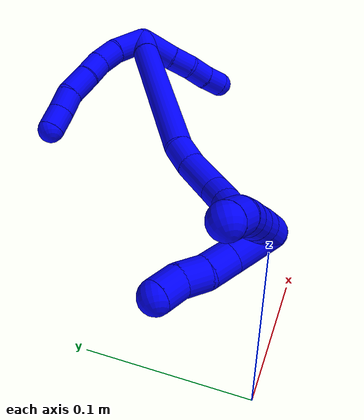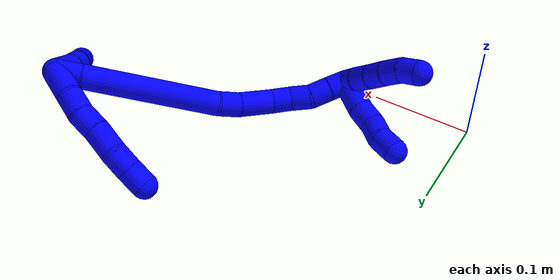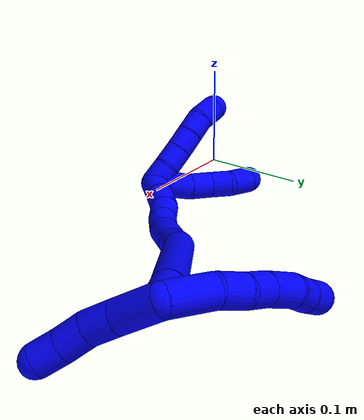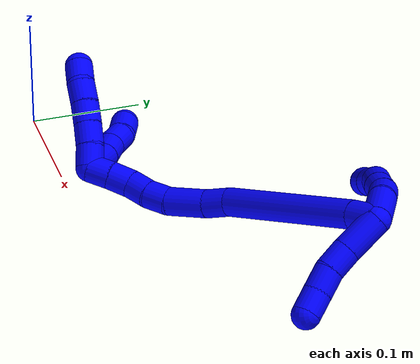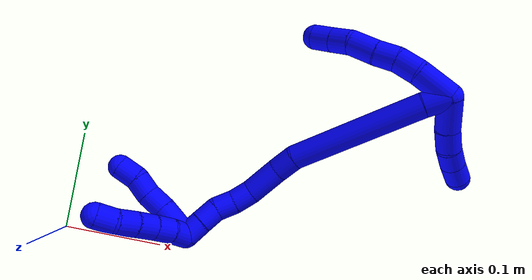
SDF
<sdf version="1.7">
 <world name="default">
  <model name="1">
   <static>0</static>
   <link name="1">
    <collision name="collision-cylinder-e_1_2_8">
     <pose>-0.015878 0.002927 -0.009066 -2.82931 -1.03041 2.59923</pose>
     <geometry><cylinder><radius>0.0125</radius><length>0.037034</length></cylinder></geometry>
     <surface>
      <friction><ode><mu>1.16</mu><mu2>1.16</mu2><slip1>0</slip1><slip2>0</slip2></ode></friction>
      <contact><ode><kp>1e+06</kp><kd>1</kd><max_vel>0</max_vel><min_depth>0.001</min_depth></ode></contact>
     </surface>
    </collision>
    <visual name="visual-cylinder-e_1_2_8">
     <pose>-0.015878 0.002927 -0.009066 -2.82931 -1.03041 2.59923</pose>
     <geometry><cylinder><radius>0.0125</radius><length>0.037034</length></cylinder></geometry>
     <material><ambient>0 0 1 1</ambient></material>
    </visual>
    <collision name="collision-cylinder-e_2_8_9">
     <pose>-0.040116 0.009416 -0.02505 -2.66612 -0.821123 2.12569</pose>
     <geometry><cylinder><radius>0.0125</radius><length>0.022842</length></cylinder></geometry>
     <surface>
      <friction><ode><mu>1.16</mu><mu2>1.16</mu2><slip1>0</slip1><slip2>0</slip2></ode></friction>
      <contact><ode><kp>1e+06</kp><kd>1</kd><max_vel>0</max_vel><min_depth>0.001</min_depth></ode></contact>
     </surface>
    </collision>
    <visual name="visual-cylinder-e_2_8_9">
     <pose>-0.040116 0.009416 -0.02505 -2.66612 -0.821123 2.12569</pose>
     <geometry><cylinder><radius>0.0125</radius><length>0.022842</length></cylinder></geometry>
     <material><ambient>0 0 1 1</ambient></material>
    </visual>
    <collision name="collision-cylinder-e_3_9_10">
     <pose>-0.05496 0.015231 -0.040282 -2.87696 -0.645338 2.38392</pose>
     <geometry><cylinder><radius>0.0125</radius><length>0.021561</length></cylinder></geometry>
     <surface>
      <friction><ode><mu>1.16</mu><mu2>1.16</mu2><slip1>0</slip1><slip2>0</slip2></ode></friction>
      <contact><ode><kp>1e+06</kp><kd>1</kd><max_vel>0</max_vel><min_depth>0.001</min_depth></ode></contact>
     </surface>
    </collision>
    <visual name="visual-cylinder-e_3_9_10">
     <pose>-0.05496 0.015231 -0.040282 -2.87696 -0.645338 2.38392</pose>
     <geometry><cylinder><radius>0.0125</radius><length>0.021561</length></cylinder></geometry>
     <material><ambient>0 0 1 1</ambient></material>
    </visual>
    <collision name="collision-cylinder-e_4_10_11">
     <pose>-0.069959 0.021627 -0.058319 -2.73883 -0.678151 2.09219</pose>
     <geometry><cylinder><radius>0.0125</radius><length>0.027147</length></cylinder></geometry>
     <surface>
      <friction><ode><mu>1.16</mu><mu2>1.16</mu2><slip1>0</slip1><slip2>0</slip2></ode></friction>
      <contact><ode><kp>1e+06</kp><kd>1</kd><max_vel>0</max_vel><min_depth>0.001</min_depth></ode></contact>
     </surface>
    </collision>
    <visual name="visual-cylinder-e_4_10_11">
     <pose>-0.069959 0.021627 -0.058319 -2.73883 -0.678151 2.09219</pose>
     <geometry><cylinder><radius>0.0125</radius><length>0.027147</length></cylinder></geometry>
     <material><ambient>0 0 1 1</ambient></material>
    </visual>
    <collision name="collision-cylinder-e_5_11_12">
     <pose>-0.082418 0.029754 -0.07676 -2.71285 -0.390319 1.47438</pose>
     <geometry><cylinder><radius>0.0125</radius><length>0.020726</length></cylinder></geometry>
     <surface>
      <friction><ode><mu>1.16</mu><mu2>1.16</mu2><slip1>0</slip1><slip2>0</slip2></ode></friction>
      <contact><ode><kp>1e+06</kp><kd>1</kd><max_vel>0</max_vel><min_depth>0.001</min_depth></ode></contact>
     </surface>
    </collision>
    <visual name="visual-cylinder-e_5_11_12">
     <pose>-0.082418 0.029754 -0.07676 -2.71285 -0.390319 1.47438</pose>
     <geometry><cylinder><radius>0.0125</radius><length>0.020726</length></cylinder></geometry>
     <material><ambient>0 0 1 1</ambient></material>
    </visual>
    <collision name="collision-cylinder-e_6_12_6">
     <pose>-0.090824 0.037061 -0.094197 -2.77753 -0.446054 1.77804</pose>
     <geometry><cylinder><radius>0.0125</radius><length>0.020689</length></cylinder></geometry>
     <surface>
      <friction><ode><mu>1.16</mu><mu2>1.16</mu2><slip1>0</slip1><slip2>0</slip2></ode></friction>
      <contact><ode><kp>1e+06</kp><kd>1</kd><max_vel>0</max_vel><min_depth>0.001</min_depth></ode></contact>
     </surface>
    </collision>
    <visual name="visual-cylinder-e_6_12_6">
     <pose>-0.090824 0.037061 -0.094197 -2.77753 -0.446054 1.77804</pose>
     <geometry><cylinder><radius>0.0125</radius><length>0.020689</length></cylinder></geometry>
     <material><ambient>0 0 1 1</ambient></material>
    </visual>
    <collision name="collision-cylinder-e_1_2_13">
     <pose>0.015991 0.00128 -0.007322 -2.96845 1.13569 -2.87116</pose>
     <geometry><cylinder><radius>0.0125</radius><length>0.035267</length></cylinder></geometry>
     <surface>
      <friction><ode><mu>1.16</mu><mu2>1.16</mu2><slip1>0</slip1><slip2>0</slip2></ode></friction>
      <contact><ode><kp>1e+06</kp><kd>1</kd><max_vel>0</max_vel><min_depth>0.001</min_depth></ode></contact>
     </surface>
    </collision>
    <visual name="visual-cylinder-e_1_2_13">
     <pose>0.015991 0.00128 -0.007322 -2.96845 1.13569 -2.87116</pose>
     <geometry><cylinder><radius>0.0125</radius><length>0.035267</length></cylinder></geometry>
     <material><ambient>0 0 1 1</ambient></material>
    </visual>
    <collision name="collision-cylinder-e_2_13_14">
     <pose>0.042631 0.003476 -0.01814 -2.88564 1.24358 -2.78626</pose>
     <geometry><cylinder><radius>0.0125</radius><length>0.022494</length></cylinder></geometry>
     <surface>
      <friction><ode><mu>1.16</mu><mu2>1.16</mu2><slip1>0</slip1><slip2>0</slip2></ode></friction>
      <contact><ode><kp>1e+06</kp><kd>1</kd><max_vel>0</max_vel><min_depth>0.001</min_depth></ode></contact>
     </surface>
    </collision>
    <visual name="visual-cylinder-e_2_13_14">
     <pose>0.042631 0.003476 -0.01814 -2.88564 1.24358 -2.78626</pose>
     <geometry><cylinder><radius>0.0125</radius><length>0.022494</length></cylinder></geometry>
     <material><ambient>0 0 1 1</ambient></material>
    </visual>
    <collision name="collision-cylinder-e_3_14_15">
     <pose>0.063443 0.007304 -0.023637 -2.17248 1.23615 -1.86697</pose>
     <geometry><cylinder><radius>0.0125</radius><length>0.021517</length></cylinder></geometry>
     <surface>
      <friction><ode><mu>1.16</mu><mu2>1.16</mu2><slip1>0</slip1><slip2>0</slip2></ode></friction>
      <contact><ode><kp>1e+06</kp><kd>1</kd><max_vel>0</max_vel><min_depth>0.001</min_depth></ode></contact>
     </surface>
    </collision>
    <visual name="visual-cylinder-e_3_14_15">
     <pose>0.063443 0.007304 -0.023637 -2.17248 1.23615 -1.86697</pose>
     <geometry><cylinder><radius>0.0125</radius><length>0.021517</length></cylinder></geometry>
     <material><ambient>0 0 1 1</ambient></material>
    </visual>
    <collision name="collision-cylinder-e_4_15_5">
     <pose>0.083668 0.012411 -0.026761 -2.04426 1.33052 -1.81784</pose>
     <geometry><cylinder><radius>0.0125</radius><length>0.020722</length></cylinder></geometry>
     <surface>
      <friction><ode><mu>1.16</mu><mu2>1.16</mu2><slip1>0</slip1><slip2>0</slip2></ode></friction>
      <contact><ode><kp>1e+06</kp><kd>1</kd><max_vel>0</max_vel><min_depth>0.001</min_depth></ode></contact>
     </surface>
    </collision>
    <visual name="visual-cylinder-e_4_15_5">
     <pose>0.083668 0.012411 -0.026761 -2.04426 1.33052 -1.81784</pose>
     <geometry><cylinder><radius>0.0125</radius><length>0.020722</length></cylinder></geometry>
     <material><ambient>0 0 1 1</ambient></material>
    </visual>
    <collision name="collision-cylinder-e_1_2_16">
     <pose>-0.00139 -0.002299 -0.01219 2.9552 -0.111612 -1.07745</pose>
     <geometry><cylinder><radius>0.0125</radius><length>0.024966</length></cylinder></geometry>
     <surface>
      <friction><ode><mu>1.16</mu><mu2>1.16</mu2><slip1>0</slip1><slip2>0</slip2></ode></friction>
      <contact><ode><kp>1e+06</kp><kd>1</kd><max_vel>0</max_vel><min_depth>0.001</min_depth></ode></contact>
     </surface>
    </collision>
    <visual name="visual-cylinder-e_1_2_16">
     <pose>-0.00139 -0.002299 -0.01219 2.9552 -0.111612 -1.07745</pose>
     <geometry><cylinder><radius>0.0125</radius><length>0.024966</length></cylinder></geometry>
     <material><ambient>0 0 1 1</ambient></material>
    </visual>
    <collision name="collision-cylinder-e_2_16_17">
     <pose>-0.004112 -0.014629 -0.091377 2.99296 -0.019654 -0.262484</pose>
     <geometry><cylinder><radius>0.0125</radius><length>0.135512</length></cylinder></geometry>
     <surface>
      <friction><ode><mu>1.16</mu><mu2>1.16</mu2><slip1>0</slip1><slip2>0</slip2></ode></friction>
      <contact><ode><kp>1e+06</kp><kd>1</kd><max_vel>0</max_vel><min_depth>0.001</min_depth></ode></contact>
     </surface>
    </collision>
    <visual name="visual-cylinder-e_2_16_17">
     <pose>-0.004112 -0.014629 -0.091377 2.99296 -0.019654 -0.262484</pose>
     <geometry><cylinder><radius>0.0125</radius><length>0.135512</length></cylinder></geometry>
     <material><ambient>0 0 1 1</ambient></material>
    </visual>
    <collision name="collision-cylinder-e_3_17_18">
     <pose>-0.002858 -0.026723 -0.16923 2.9539 0.229872 1.77358</pose>
     <geometry><cylinder><radius>0.0125</radius><length>0.022699</length></cylinder></geometry>
     <surface>
      <friction><ode><mu>1.16</mu><mu2>1.16</mu2><slip1>0</slip1><slip2>0</slip2></ode></friction>
      <contact><ode><kp>1e+06</kp><kd>1</kd><max_vel>0</max_vel><min_depth>0.001</min_depth></ode></contact>
     </surface>
    </collision>
    <visual name="visual-cylinder-e_3_17_18">
     <pose>-0.002858 -0.026723 -0.16923 2.9539 0.229872 1.77358</pose>
     <geometry><cylinder><radius>0.0125</radius><length>0.022699</length></cylinder></geometry>
     <material><ambient>0 0 1 1</ambient></material>
    </visual>
    <collision name="collision-cylinder-e_4_18_19">
     <pose>0.003602 -0.035008 -0.196547 2.78014 0.216675 1.07383</pose>
     <geometry><cylinder><radius>0.0125</radius><length>0.036038</length></cylinder></geometry>
     <surface>
      <friction><ode><mu>1.16</mu><mu2>1.16</mu2><slip1>0</slip1><slip2>0</slip2></ode></friction>
      <contact><ode><kp>1e+06</kp><kd>1</kd><max_vel>0</max_vel><min_depth>0.001</min_depth></ode></contact>
     </surface>
    </collision>
    <visual name="visual-cylinder-e_4_18_19">
     <pose>0.003602 -0.035008 -0.196547 2.78014 0.216675 1.07383</pose>
     <geometry><cylinder><radius>0.0125</radius><length>0.036038</length></cylinder></geometry>
     <material><ambient>0 0 1 1</ambient></material>
    </visual>
    <collision name="collision-cylinder-e_5_19_20">
     <pose>0.007598 -0.046131 -0.222005 2.64288 0.011988 0.047065</pose>
     <geometry><cylinder><radius>0.0125</radius><length>0.020492</length></cylinder></geometry>
     <surface>
      <friction><ode><mu>1.16</mu><mu2>1.16</mu2><slip1>0</slip1><slip2>0</slip2></ode></friction>
      <contact><ode><kp>1e+06</kp><kd>1</kd><max_vel>0</max_vel><min_depth>0.001</min_depth></ode></contact>
     </surface>
    </collision>
    <visual name="visual-cylinder-e_5_19_20">
     <pose>0.007598 -0.046131 -0.222005 2.64288 0.011988 0.047065</pose>
     <geometry><cylinder><radius>0.0125</radius><length>0.020492</length></cylinder></geometry>
     <material><ambient>0 0 1 1</ambient></material>
    </visual>
    <collision name="collision-cylinder-e_6_20_21">
     <pose>0.006003 -0.056049 -0.239484 2.60738 -0.172655 -0.612617</pose>
     <geometry><cylinder><radius>0.0125</radius><length>0.020007</length></cylinder></geometry>
     <surface>
      <friction><ode><mu>1.16</mu><mu2>1.16</mu2><slip1>0</slip1><slip2>0</slip2></ode></friction>
      <contact><ode><kp>1e+06</kp><kd>1</kd><max_vel>0</max_vel><min_depth>0.001</min_depth></ode></contact>
     </surface>
    </collision>
    <visual name="visual-cylinder-e_6_20_21">
     <pose>0.006003 -0.056049 -0.239484 2.60738 -0.172655 -0.612617</pose>
     <geometry><cylinder><radius>0.0125</radius><length>0.020007</length></cylinder></geometry>
     <material><ambient>0 0 1 1</ambient></material>
    </visual>
    <collision name="collision-cylinder-e_7_21_22">
     <pose>0.005327 -0.067838 -0.255384 2.40176 0.103428 0.265398</pose>
     <geometry><cylinder><radius>0.0125</radius><length>0.020195</length></cylinder></geometry>
     <surface>
      <friction><ode><mu>1.16</mu><mu2>1.16</mu2><slip1>0</slip1><slip2>0</slip2></ode></friction>
      <contact><ode><kp>1e+06</kp><kd>1</kd><max_vel>0</max_vel><min_depth>0.001</min_depth></ode></contact>
     </surface>
    </collision>
    <visual name="visual-cylinder-e_7_21_22">
     <pose>0.005327 -0.067838 -0.255384 2.40176 0.103428 0.265398</pose>
     <geometry><cylinder><radius>0.0125</radius><length>0.020195</length></cylinder></geometry>
     <material><ambient>0 0 1 1</ambient></material>
    </visual>
    <collision name="collision-cylinder-e_8_22_1">
     <pose>0.00782 -0.081004 -0.270412 2.44277 0.144955 0.393376</pose>
     <geometry><cylinder><radius>0.0125</radius><length>0.020091</length></cylinder></geometry>
     <surface>
      <friction><ode><mu>1.16</mu><mu2>1.16</mu2><slip1>0</slip1><slip2>0</slip2></ode></friction>
      <contact><ode><kp>1e+06</kp><kd>1</kd><max_vel>0</max_vel><min_depth>0.001</min_depth></ode></contact>
     </surface>
    </collision>
    <visual name="visual-cylinder-e_8_22_1">
     <pose>0.00782 -0.081004 -0.270412 2.44277 0.144955 0.393376</pose>
     <geometry><cylinder><radius>0.0125</radius><length>0.020091</length></cylinder></geometry>
     <material><ambient>0 0 1 1</ambient></material>
    </visual>
    <collision name="collision-cylinder-e_1_1_23">
     <pose>-0.005824 -0.080935 -0.285528 -2.43072 -0.990126 1.93698</pose>
     <geometry><cylinder><radius>0.0125</radius><length>0.03611</length></cylinder></geometry>
     <surface>
      <friction><ode><mu>1.16</mu><mu2>1.16</mu2><slip1>0</slip1><slip2>0</slip2></ode></friction>
      <contact><ode><kp>1e+06</kp><kd>1</kd><max_vel>0</max_vel><min_depth>0.001</min_depth></ode></contact>
     </surface>
    </collision>
    <visual name="visual-cylinder-e_1_1_23">
     <pose>-0.005824 -0.080935 -0.285528 -2.43072 -0.990126 1.93698</pose>
     <geometry><cylinder><radius>0.0125</radius><length>0.03611</length></cylinder></geometry>
     <material><ambient>0 0 1 1</ambient></material>
    </visual>
    <collision name="collision-cylinder-e_2_23_24">
     <pose>-0.030597 -0.072384 -0.298075 -2.74878 -1.05732 2.48497</pose>
     <geometry><cylinder><radius>0.0125</radius><length>0.022218</length></cylinder></geometry>
     <surface>
      <friction><ode><mu>1.16</mu><mu2>1.16</mu2><slip1>0</slip1><slip2>0</slip2></ode></friction>
      <contact><ode><kp>1e+06</kp><kd>1</kd><max_vel>0</max_vel><min_depth>0.001</min_depth></ode></contact>
     </surface>
    </collision>
    <visual name="visual-cylinder-e_2_23_24">
     <pose>-0.030597 -0.072384 -0.298075 -2.74878 -1.05732 2.48497</pose>
     <geometry><cylinder><radius>0.0125</radius><length>0.022218</length></cylinder></geometry>
     <material><ambient>0 0 1 1</ambient></material>
    </visual>
    <collision name="collision-cylinder-e_3_24_25">
     <pose>-0.049924 -0.067994 -0.305369 -2.3458 -1.24874 2.08543</pose>
     <geometry><cylinder><radius>0.0125</radius><length>0.020347</length></cylinder></geometry>
     <surface>
      <friction><ode><mu>1.16</mu><mu2>1.16</mu2><slip1>0</slip1><slip2>0</slip2></ode></friction>
      <contact><ode><kp>1e+06</kp><kd>1</kd><max_vel>0</max_vel><min_depth>0.001</min_depth></ode></contact>
     </surface>
    </collision>
    <visual name="visual-cylinder-e_3_24_25">
     <pose>-0.049924 -0.067994 -0.305369 -2.3458 -1.24874 2.08543</pose>
     <geometry><cylinder><radius>0.0125</radius><length>0.020347</length></cylinder></geometry>
     <material><ambient>0 0 1 1</ambient></material>
    </visual>
    <collision name="collision-cylinder-e_4_25_4">
     <pose>-0.068679 -0.064953 -0.313121 -3.00771 -1.02357 2.90401</pose>
     <geometry><cylinder><radius>0.0125</radius><length>0.021325</length></cylinder></geometry>
     <surface>
      <friction><ode><mu>1.16</mu><mu2>1.16</mu2><slip1>0</slip1><slip2>0</slip2></ode></friction>
      <contact><ode><kp>1e+06</kp><kd>1</kd><max_vel>0</max_vel><min_depth>0.001</min_depth></ode></contact>
     </surface>
    </collision>
    <visual name="visual-cylinder-e_4_25_4">
     <pose>-0.068679 -0.064953 -0.313121 -3.00771 -1.02357 2.90401</pose>
     <geometry><cylinder><radius>0.0125</radius><length>0.021325</length></cylinder></geometry>
     <material><ambient>0 0 1 1</ambient></material>
    </visual>
    <collision name="collision-cylinder-e_1_1_26">
     <pose>0.00123 -0.093173 -0.279436 1.81083 -0.934142 -1.14231</pose>
     <geometry><cylinder><radius>0.0125</radius><length>0.02</length></cylinder></geometry>
     <surface>
      <friction><ode><mu>1.16</mu><mu2>1.16</mu2><slip1>0</slip1><slip2>0</slip2></ode></friction>
      <contact><ode><kp>1e+06</kp><kd>1</kd><max_vel>0</max_vel><min_depth>0.001</min_depth></ode></contact>
     </surface>
    </collision>
    <visual name="visual-cylinder-e_1_1_26">
     <pose>0.00123 -0.093173 -0.279436 1.81083 -0.934142 -1.14231</pose>
     <geometry><cylinder><radius>0.0125</radius><length>0.02</length></cylinder></geometry>
     <material><ambient>0 0 1 1</ambient></material>
    </visual>
    <collision name="collision-cylinder-e_2_26_27">
     <pose>-0.014425 -0.104829 -0.283575 2.00486 -0.865509 -1.25241</pose>
     <geometry><cylinder><radius>0.0125</radius><length>0.02</length></cylinder></geometry>
     <surface>
      <friction><ode><mu>1.16</mu><mu2>1.16</mu2><slip1>0</slip1><slip2>0</slip2></ode></friction>
      <contact><ode><kp>1e+06</kp><kd>1</kd><max_vel>0</max_vel><min_depth>0.001</min_depth></ode></contact>
     </surface>
    </collision>
    <visual name="visual-cylinder-e_2_26_27">
     <pose>-0.014425 -0.104829 -0.283575 2.00486 -0.865509 -1.25241</pose>
     <geometry><cylinder><radius>0.0125</radius><length>0.02</length></cylinder></geometry>
     <material><ambient>0 0 1 1</ambient></material>
    </visual>
    <collision name="collision-cylinder-e_3_27_28">
     <pose>-0.029421 -0.116831 -0.289138 2.0047 -0.830408 -1.20813</pose>
     <geometry><cylinder><radius>0.0125</radius><length>0.02</length></cylinder></geometry>
     <surface>
      <friction><ode><mu>1.16</mu><mu2>1.16</mu2><slip1>0</slip1><slip2>0</slip2></ode></friction>
      <contact><ode><kp>1e+06</kp><kd>1</kd><max_vel>0</max_vel><min_depth>0.001</min_depth></ode></contact>
     </surface>
    </collision>
    <visual name="visual-cylinder-e_3_27_28">
     <pose>-0.029421 -0.116831 -0.289138 2.0047 -0.830408 -1.20813</pose>
     <geometry><cylinder><radius>0.0125</radius><length>0.02</length></cylinder></geometry>
     <material><ambient>0 0 1 1</ambient></material>
    </visual>
    <collision name="collision-cylinder-e_4_28_29">
     <pose>-0.043956 -0.128971 -0.295522 2.10345 -0.797087 -1.27027</pose>
     <geometry><cylinder><radius>0.0125</radius><length>0.02</length></cylinder></geometry>
     <surface>
      <friction><ode><mu>1.16</mu><mu2>1.16</mu2><slip1>0</slip1><slip2>0</slip2></ode></friction>
      <contact><ode><kp>1e+06</kp><kd>1</kd><max_vel>0</max_vel><min_depth>0.001</min_depth></ode></contact>
     </surface>
    </collision>
    <visual name="visual-cylinder-e_4_28_29">
     <pose>-0.043956 -0.128971 -0.295522 2.10345 -0.797087 -1.27027</pose>
     <geometry><cylinder><radius>0.0125</radius><length>0.02</length></cylinder></geometry>
     <material><ambient>0 0 1 1</ambient></material>
    </visual>
    <collision name="collision-cylinder-e_5_29_3">
     <pose>-0.059134 -0.138588 -0.303832 2.49465 -0.931407 -1.96504</pose>
     <geometry><cylinder><radius>0.0125</radius><length>0.02</length></cylinder></geometry>
     <surface>
      <friction><ode><mu>1.16</mu><mu2>1.16</mu2><slip1>0</slip1><slip2>0</slip2></ode></friction>
      <contact><ode><kp>1e+06</kp><kd>1</kd><max_vel>0</max_vel><min_depth>0.001</min_depth></ode></contact>
     </surface>
    </collision>
    <visual name="visual-cylinder-e_5_29_3">
     <pose>-0.059134 -0.138588 -0.303832 2.49465 -0.931407 -1.96504</pose>
     <geometry><cylinder><radius>0.0125</radius><length>0.02</length></cylinder></geometry>
     <material><ambient>0 0 1 1</ambient></material>
    </visual>
    <collision name="collision-sphere-3">
     <pose>-0.067159 -0.142184 -0.308594 0 -0 0</pose>
     <geometry><sphere><radius>0.0125</radius></sphere></geometry>
     <surface>
      <friction><ode><mu>1.16</mu><mu2>1.16</mu2><slip1>0</slip1><slip2>0</slip2></ode></friction>
      <contact><ode><kp>1e+06</kp><kd>1</kd><max_vel>0</max_vel><min_depth>0.001</min_depth></ode></contact>
     </surface>
    </collision>
    <visual name="visual-sphere-3">
     <pose>-0.067159 -0.142184 -0.308594 0 -0 0</pose>
     <geometry><sphere><radius>0.0125</radius></sphere></geometry>
     <material><ambient>0 0 1 1</ambient></material>
    </visual>
    <collision name="collision-sphere-29">
     <pose>-0.05111 -0.134991 -0.299071 0 -0 0</pose>
     <geometry><sphere><radius>0.0125</radius></sphere></geometry>
     <surface>
      <friction><ode><mu>1.16</mu><mu2>1.16</mu2><slip1>0</slip1><slip2>0</slip2></ode></friction>
      <contact><ode><kp>1e+06</kp><kd>1</kd><max_vel>0</max_vel><min_depth>0.001</min_depth></ode></contact>
     </surface>
    </collision>
    <visual name="visual-sphere-29">
     <pose>-0.05111 -0.134991 -0.299071 0 -0 0</pose>
     <geometry><sphere><radius>0.0125</radius></sphere></geometry>
     <material><ambient>0 0 1 1</ambient></material>
    </visual>
    <collision name="collision-sphere-28">
     <pose>-0.036803 -0.122951 -0.291974 0 -0 0</pose>
     <geometry><sphere><radius>0.0125</radius></sphere></geometry>
     <surface>
      <friction><ode><mu>1.16</mu><mu2>1.16</mu2><slip1>0</slip1><slip2>0</slip2></ode></friction>
      <contact><ode><kp>1e+06</kp><kd>1</kd><max_vel>0</max_vel><min_depth>0.001</min_depth></ode></contact>
     </surface>
    </collision>
    <visual name="visual-sphere-28">
     <pose>-0.036803 -0.122951 -0.291974 0 -0 0</pose>
     <geometry><sphere><radius>0.0125</radius></sphere></geometry>
     <material><ambient>0 0 1 1</ambient></material>
    </visual>
    <collision name="collision-sphere-27">
     <pose>-0.022039 -0.11071 -0.286302 0 -0 0</pose>
     <geometry><sphere><radius>0.0125</radius></sphere></geometry>
     <surface>
      <friction><ode><mu>1.16</mu><mu2>1.16</mu2><slip1>0</slip1><slip2>0</slip2></ode></friction>
      <contact><ode><kp>1e+06</kp><kd>1</kd><max_vel>0</max_vel><min_depth>0.001</min_depth></ode></contact>
     </surface>
    </collision>
    <visual name="visual-sphere-27">
     <pose>-0.022039 -0.11071 -0.286302 0 -0 0</pose>
     <geometry><sphere><radius>0.0125</radius></sphere></geometry>
     <material><ambient>0 0 1 1</ambient></material>
    </visual>
    <collision name="collision-sphere-26">
     <pose>-0.006811 -0.098947 -0.280849 0 -0 0</pose>
     <geometry><sphere><radius>0.0125</radius></sphere></geometry>
     <surface>
      <friction><ode><mu>1.16</mu><mu2>1.16</mu2><slip1>0</slip1><slip2>0</slip2></ode></friction>
      <contact><ode><kp>1e+06</kp><kd>1</kd><max_vel>0</max_vel><min_depth>0.001</min_depth></ode></contact>
     </surface>
    </collision>
    <visual name="visual-sphere-26">
     <pose>-0.006811 -0.098947 -0.280849 0 -0 0</pose>
     <geometry><sphere><radius>0.0125</radius></sphere></geometry>
     <material><ambient>0 0 1 1</ambient></material>
    </visual>
    <collision name="collision-sphere-4">
     <pose>-0.077785 -0.064213 -0.318619 0 -0 0</pose>
     <geometry><sphere><radius>0.0125</radius></sphere></geometry>
     <surface>
      <friction><ode><mu>1.16</mu><mu2>1.16</mu2><slip1>0</slip1><slip2>0</slip2></ode></friction>
      <contact><ode><kp>1e+06</kp><kd>1</kd><max_vel>0</max_vel><min_depth>0.001</min_depth></ode></contact>
     </surface>
    </collision>
    <visual name="visual-sphere-4">
     <pose>-0.077785 -0.064213 -0.318619 0 -0 0</pose>
     <geometry><sphere><radius>0.0125</radius></sphere></geometry>
     <material><ambient>0 0 1 1</ambient></material>
    </visual>
    <collision name="collision-sphere-25">
     <pose>-0.059574 -0.065694 -0.307623 0 -0 0</pose>
     <geometry><sphere><radius>0.0125</radius></sphere></geometry>
     <surface>
      <friction><ode><mu>1.16</mu><mu2>1.16</mu2><slip1>0</slip1><slip2>0</slip2></ode></friction>
      <contact><ode><kp>1e+06</kp><kd>1</kd><max_vel>0</max_vel><min_depth>0.001</min_depth></ode></contact>
     </surface>
    </collision>
    <visual name="visual-sphere-25">
     <pose>-0.059574 -0.065694 -0.307623 0 -0 0</pose>
     <geometry><sphere><radius>0.0125</radius></sphere></geometry>
     <material><ambient>0 0 1 1</ambient></material>
    </visual>
    <collision name="collision-sphere-24">
     <pose>-0.040273 -0.070295 -0.303116 0 -0 0</pose>
     <geometry><sphere><radius>0.0125</radius></sphere></geometry>
     <surface>
      <friction><ode><mu>1.16</mu><mu2>1.16</mu2><slip1>0</slip1><slip2>0</slip2></ode></friction>
      <contact><ode><kp>1e+06</kp><kd>1</kd><max_vel>0</max_vel><min_depth>0.001</min_depth></ode></contact>
     </surface>
    </collision>
    <visual name="visual-sphere-24">
     <pose>-0.040273 -0.070295 -0.303116 0 -0 0</pose>
     <geometry><sphere><radius>0.0125</radius></sphere></geometry>
     <material><ambient>0 0 1 1</ambient></material>
    </visual>
    <collision name="collision-sphere-23">
     <pose>-0.02092 -0.074473 -0.293034 0 -0 0</pose>
     <geometry><sphere><radius>0.0125</radius></sphere></geometry>
     <surface>
      <friction><ode><mu>1.16</mu><mu2>1.16</mu2><slip1>0</slip1><slip2>0</slip2></ode></friction>
      <contact><ode><kp>1e+06</kp><kd>1</kd><max_vel>0</max_vel><min_depth>0.001</min_depth></ode></contact>
     </surface>
    </collision>
    <visual name="visual-sphere-23">
     <pose>-0.02092 -0.074473 -0.293034 0 -0 0</pose>
     <geometry><sphere><radius>0.0125</radius></sphere></geometry>
     <material><ambient>0 0 1 1</ambient></material>
    </visual>
    <collision name="collision-sphere-1">
     <pose>0.009271 -0.087398 -0.278022 0 -0 0</pose>
     <geometry><sphere><radius>0.0125</radius></sphere></geometry>
     <surface>
      <friction><ode><mu>1.16</mu><mu2>1.16</mu2><slip1>0</slip1><slip2>0</slip2></ode></friction>
      <contact><ode><kp>1e+06</kp><kd>1</kd><max_vel>0</max_vel><min_depth>0.001</min_depth></ode></contact>
     </surface>
    </collision>
    <visual name="visual-sphere-1">
     <pose>0.009271 -0.087398 -0.278022 0 -0 0</pose>
     <geometry><sphere><radius>0.0125</radius></sphere></geometry>
     <material><ambient>0 0 1 1</ambient></material>
    </visual>
    <collision name="collision-sphere-22">
     <pose>0.006369 -0.074609 -0.262802 0 -0 0</pose>
     <geometry><sphere><radius>0.0125</radius></sphere></geometry>
     <surface>
      <friction><ode><mu>1.16</mu><mu2>1.16</mu2><slip1>0</slip1><slip2>0</slip2></ode></friction>
      <contact><ode><kp>1e+06</kp><kd>1</kd><max_vel>0</max_vel><min_depth>0.001</min_depth></ode></contact>
     </surface>
    </collision>
    <visual name="visual-sphere-22">
     <pose>0.006369 -0.074609 -0.262802 0 -0 0</pose>
     <geometry><sphere><radius>0.0125</radius></sphere></geometry>
     <material><ambient>0 0 1 1</ambient></material>
    </visual>
    <collision name="collision-sphere-21">
     <pose>0.004284 -0.061067 -0.247966 0 -0 0</pose>
     <geometry><sphere><radius>0.0125</radius></sphere></geometry>
     <surface>
      <friction><ode><mu>1.16</mu><mu2>1.16</mu2><slip1>0</slip1><slip2>0</slip2></ode></friction>
      <contact><ode><kp>1e+06</kp><kd>1</kd><max_vel>0</max_vel><min_depth>0.001</min_depth></ode></contact>
     </surface>
    </collision>
    <visual name="visual-sphere-21">
     <pose>0.004284 -0.061067 -0.247966 0 -0 0</pose>
     <geometry><sphere><radius>0.0125</radius></sphere></geometry>
     <material><ambient>0 0 1 1</ambient></material>
    </visual>
    <collision name="collision-sphere-12">
     <pose>-0.086361 0.033738 -0.085476 0 -0 0</pose>
     <geometry><sphere><radius>0.0125</radius></sphere></geometry>
     <surface>
      <friction><ode><mu>1.16</mu><mu2>1.16</mu2><slip1>0</slip1><slip2>0</slip2></ode></friction>
      <contact><ode><kp>1e+06</kp><kd>1</kd><max_vel>0</max_vel><min_depth>0.001</min_depth></ode></contact>
     </surface>
    </collision>
    <visual name="visual-sphere-12">
     <pose>-0.086361 0.033738 -0.085476 0 -0 0</pose>
     <geometry><sphere><radius>0.0125</radius></sphere></geometry>
     <material><ambient>0 0 1 1</ambient></material>
    </visual>
    <collision name="collision-sphere-11">
     <pose>-0.078475 0.02577 -0.068044 0 -0 0</pose>
     <geometry><sphere><radius>0.0125</radius></sphere></geometry>
     <surface>
      <friction><ode><mu>1.16</mu><mu2>1.16</mu2><slip1>0</slip1><slip2>0</slip2></ode></friction>
      <contact><ode><kp>1e+06</kp><kd>1</kd><max_vel>0</max_vel><min_depth>0.001</min_depth></ode></contact>
     </surface>
    </collision>
    <visual name="visual-sphere-11">
     <pose>-0.078475 0.02577 -0.068044 0 -0 0</pose>
     <geometry><sphere><radius>0.0125</radius></sphere></geometry>
     <material><ambient>0 0 1 1</ambient></material>
    </visual>
    <collision name="collision-sphere-10">
     <pose>-0.061444 0.017484 -0.048595 0 -0 0</pose>
     <geometry><sphere><radius>0.0125</radius></sphere></geometry>
     <surface>
      <friction><ode><mu>1.16</mu><mu2>1.16</mu2><slip1>0</slip1><slip2>0</slip2></ode></friction>
      <contact><ode><kp>1e+06</kp><kd>1</kd><max_vel>0</max_vel><min_depth>0.001</min_depth></ode></contact>
     </surface>
    </collision>
    <visual name="visual-sphere-10">
     <pose>-0.061444 0.017484 -0.048595 0 -0 0</pose>
     <geometry><sphere><radius>0.0125</radius></sphere></geometry>
     <material><ambient>0 0 1 1</ambient></material>
    </visual>
    <collision name="collision-sphere-9">
     <pose>-0.048475 0.012978 -0.031969 0 -0 0</pose>
     <geometry><sphere><radius>0.0125</radius></sphere></geometry>
     <surface>
      <friction><ode><mu>1.16</mu><mu2>1.16</mu2><slip1>0</slip1><slip2>0</slip2></ode></friction>
      <contact><ode><kp>1e+06</kp><kd>1</kd><max_vel>0</max_vel><min_depth>0.001</min_depth></ode></contact>
     </surface>
    </collision>
    <visual name="visual-sphere-9">
     <pose>-0.048475 0.012978 -0.031969 0 -0 0</pose>
     <geometry><sphere><radius>0.0125</radius></sphere></geometry>
     <material><ambient>0 0 1 1</ambient></material>
    </visual>
    <collision name="collision-sphere-2">
     <geometry><sphere><radius>0.0125</radius></sphere></geometry>
     <surface>
      <friction><ode><mu>1.16</mu><mu2>1.16</mu2><slip1>0</slip1><slip2>0</slip2></ode></friction>
      <contact><ode><kp>1e+06</kp><kd>1</kd><max_vel>0</max_vel><min_depth>0.001</min_depth></ode></contact>
     </surface>
    </collision>
    <visual name="visual-sphere-2">
     <geometry><sphere><radius>0.0125</radius></sphere></geometry>
     <material><ambient>0 0 1 1</ambient></material>
    </visual>
    <collision name="collision-sphere-19">
     <pose>0.007476 -0.041231 -0.213008 0 -0 0</pose>
     <geometry><sphere><radius>0.0125</radius></sphere></geometry>
     <surface>
      <friction><ode><mu>1.16</mu><mu2>1.16</mu2><slip1>0</slip1><slip2>0</slip2></ode></friction>
      <contact><ode><kp>1e+06</kp><kd>1</kd><max_vel>0</max_vel><min_depth>0.001</min_depth></ode></contact>
     </surface>
    </collision>
    <visual name="visual-sphere-19">
     <pose>0.007476 -0.041231 -0.213008 0 -0 0</pose>
     <geometry><sphere><radius>0.0125</radius></sphere></geometry>
     <material><ambient>0 0 1 1</ambient></material>
    </visual>
    <collision name="collision-sphere-8">
     <pose>-0.031757 0.005854 -0.018131 0 -0 0</pose>
     <geometry><sphere><radius>0.0125</radius></sphere></geometry>
     <surface>
      <friction><ode><mu>1.16</mu><mu2>1.16</mu2><slip1>0</slip1><slip2>0</slip2></ode></friction>
      <contact><ode><kp>1e+06</kp><kd>1</kd><max_vel>0</max_vel><min_depth>0.001</min_depth></ode></contact>
     </surface>
    </collision>
    <visual name="visual-sphere-8">
     <pose>-0.031757 0.005854 -0.018131 0 -0 0</pose>
     <geometry><sphere><radius>0.0125</radius></sphere></geometry>
     <material><ambient>0 0 1 1</ambient></material>
    </visual>
    <collision name="collision-sphere-6">
     <pose>-0.095286 0.040385 -0.102918 0 -0 0</pose>
     <geometry><sphere><radius>0.0125</radius></sphere></geometry>
     <surface>
      <friction><ode><mu>1.16</mu><mu2>1.16</mu2><slip1>0</slip1><slip2>0</slip2></ode></friction>
      <contact><ode><kp>1e+06</kp><kd>1</kd><max_vel>0</max_vel><min_depth>0.001</min_depth></ode></contact>
     </surface>
    </collision>
    <visual name="visual-sphere-6">
     <pose>-0.095286 0.040385 -0.102918 0 -0 0</pose>
     <geometry><sphere><radius>0.0125</radius></sphere></geometry>
     <material><ambient>0 0 1 1</ambient></material>
    </visual>
    <collision name="collision-sphere-13">
     <pose>0.031981 0.002561 -0.014643 0 -0 0</pose>
     <geometry><sphere><radius>0.0125</radius></sphere></geometry>
     <surface>
      <friction><ode><mu>1.16</mu><mu2>1.16</mu2><slip1>0</slip1><slip2>0</slip2></ode></friction>
      <contact><ode><kp>1e+06</kp><kd>1</kd><max_vel>0</max_vel><min_depth>0.001</min_depth></ode></contact>
     </surface>
    </collision>
    <visual name="visual-sphere-13">
     <pose>0.031981 0.002561 -0.014643 0 -0 0</pose>
     <geometry><sphere><radius>0.0125</radius></sphere></geometry>
     <material><ambient>0 0 1 1</ambient></material>
    </visual>
    <collision name="collision-sphere-14">
     <pose>0.053281 0.004391 -0.021637 0 -0 0</pose>
     <geometry><sphere><radius>0.0125</radius></sphere></geometry>
     <surface>
      <friction><ode><mu>1.16</mu><mu2>1.16</mu2><slip1>0</slip1><slip2>0</slip2></ode></friction>
      <contact><ode><kp>1e+06</kp><kd>1</kd><max_vel>0</max_vel><min_depth>0.001</min_depth></ode></contact>
     </surface>
    </collision>
    <visual name="visual-sphere-14">
     <pose>0.053281 0.004391 -0.021637 0 -0 0</pose>
     <geometry><sphere><radius>0.0125</radius></sphere></geometry>
     <material><ambient>0 0 1 1</ambient></material>
    </visual>
    <collision name="collision-sphere-15">
     <pose>0.073605 0.010217 -0.025637 0 -0 0</pose>
     <geometry><sphere><radius>0.0125</radius></sphere></geometry>
     <surface>
      <friction><ode><mu>1.16</mu><mu2>1.16</mu2><slip1>0</slip1><slip2>0</slip2></ode></friction>
      <contact><ode><kp>1e+06</kp><kd>1</kd><max_vel>0</max_vel><min_depth>0.001</min_depth></ode></contact>
     </surface>
    </collision>
    <visual name="visual-sphere-15">
     <pose>0.073605 0.010217 -0.025637 0 -0 0</pose>
     <geometry><sphere><radius>0.0125</radius></sphere></geometry>
     <material><ambient>0 0 1 1</ambient></material>
    </visual>
    <collision name="collision-sphere-5">
     <pose>0.093732 0.014606 -0.027886 0 -0 0</pose>
     <geometry><sphere><radius>0.0125</radius></sphere></geometry>
     <surface>
      <friction><ode><mu>1.16</mu><mu2>1.16</mu2><slip1>0</slip1><slip2>0</slip2></ode></friction>
      <contact><ode><kp>1e+06</kp><kd>1</kd><max_vel>0</max_vel><min_depth>0.001</min_depth></ode></contact>
     </surface>
    </collision>
    <visual name="visual-sphere-5">
     <pose>0.093732 0.014606 -0.027886 0 -0 0</pose>
     <geometry><sphere><radius>0.0125</radius></sphere></geometry>
     <material><ambient>0 0 1 1</ambient></material>
    </visual>
    <collision name="collision-sphere-16">
     <pose>-0.002781 -0.004598 -0.024381 0 -0 0</pose>
     <geometry><sphere><radius>0.0125</radius></sphere></geometry>
     <surface>
      <friction><ode><mu>1.16</mu><mu2>1.16</mu2><slip1>0</slip1><slip2>0</slip2></ode></friction>
      <contact><ode><kp>1e+06</kp><kd>1</kd><max_vel>0</max_vel><min_depth>0.001</min_depth></ode></contact>
     </surface>
    </collision>
    <visual name="visual-sphere-16">
     <pose>-0.002781 -0.004598 -0.024381 0 -0 0</pose>
     <geometry><sphere><radius>0.0125</radius></sphere></geometry>
     <material><ambient>0 0 1 1</ambient></material>
    </visual>
    <collision name="collision-sphere-17">
     <pose>-0.005444 -0.024661 -0.158373 0 -0 0</pose>
     <geometry><sphere><radius>0.0125</radius></sphere></geometry>
     <surface>
      <friction><ode><mu>1.16</mu><mu2>1.16</mu2><slip1>0</slip1><slip2>0</slip2></ode></friction>
      <contact><ode><kp>1e+06</kp><kd>1</kd><max_vel>0</max_vel><min_depth>0.001</min_depth></ode></contact>
     </surface>
    </collision>
    <visual name="visual-sphere-17">
     <pose>-0.005444 -0.024661 -0.158373 0 -0 0</pose>
     <geometry><sphere><radius>0.0125</radius></sphere></geometry>
     <material><ambient>0 0 1 1</ambient></material>
    </visual>
    <collision name="collision-sphere-18">
     <pose>-0.000272 -0.028785 -0.180087 0 -0 0</pose>
     <geometry><sphere><radius>0.0125</radius></sphere></geometry>
     <surface>
      <friction><ode><mu>1.16</mu><mu2>1.16</mu2><slip1>0</slip1><slip2>0</slip2></ode></friction>
      <contact><ode><kp>1e+06</kp><kd>1</kd><max_vel>0</max_vel><min_depth>0.001</min_depth></ode></contact>
     </surface>
    </collision>
    <visual name="visual-sphere-18">
     <pose>-0.000272 -0.028785 -0.180087 0 -0 0</pose>
     <geometry><sphere><radius>0.0125</radius></sphere></geometry>
     <material><ambient>0 0 1 1</ambient></material>
    </visual>
    <collision name="collision-sphere-20">
     <pose>0.007721 -0.051032 -0.231003 0 -0 0</pose>
     <geometry><sphere><radius>0.0125</radius></sphere></geometry>
     <surface>
      <friction><ode><mu>1.16</mu><mu2>1.16</mu2><slip1>0</slip1><slip2>0</slip2></ode></friction>
      <contact><ode><kp>1e+06</kp><kd>1</kd><max_vel>0</max_vel><min_depth>0.001</min_depth></ode></contact>
     </surface>
    </collision>
    <visual name="visual-sphere-20">
     <pose>0.007721 -0.051032 -0.231003 0 -0 0</pose>
     <geometry><sphere><radius>0.0125</radius></sphere></geometry>
     <material><ambient>0 0 1 1</ambient></material>
    </visual>
    <inertial>
     <pose>-0.0131 -0.033012 -0.148034 0 -0 0</pose>
     <mass>0.75</mass>
     <inertia>
      <ixx>0.000147</ixx>
      <ixy>0</ixy>
      <ixz>0</ixz>
      <iyy>-0.000226</iyy>
      <iyz>0</iyz>
      <izz>1.4e-05</izz>
     </inertia>
    </inertial>
   </link>
   <pose>0.34876 0.20337 0.069878 -1.10475 0.307354 -0.857321</pose>
  </model>
 </world>
</sdf>
